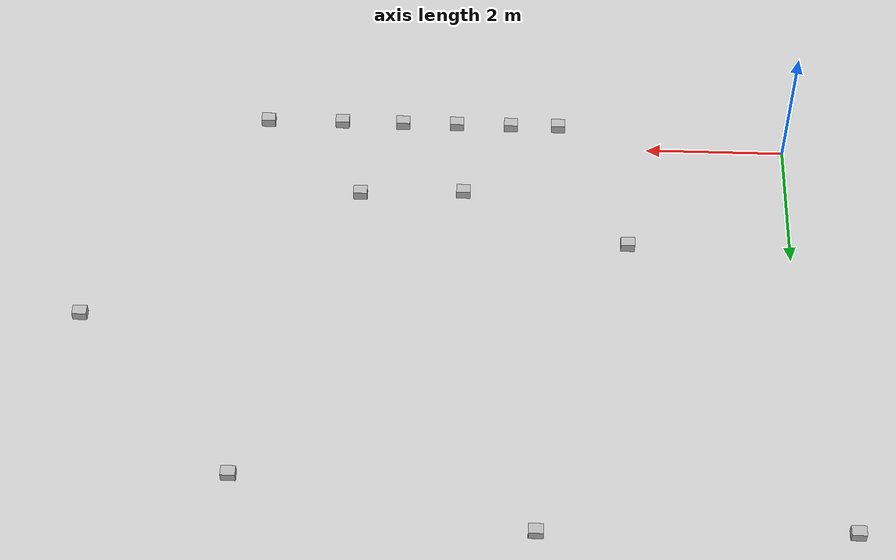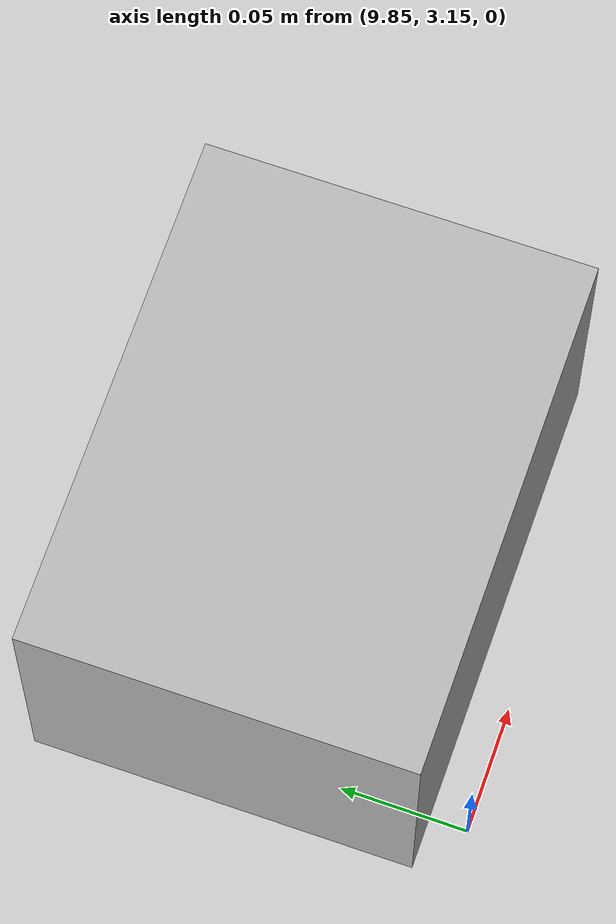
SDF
<?xml version="1.0"?>
<sdf version="1.4">
  <world name="carollo_track_v1">
    <include>
      <uri>model://selfie_description/models/carollo_track_v1</uri>
      <name>track</name>
      <pose>3.78 4.56 0 0 0 0</pose>
    </include>
    <include>
      <uri>model://sun</uri>
      <pose>0 0 10 0 0 0</pose>
      <name>sun</name>
    </include>
    <include>
      <uri>model://selfie_description/models/box</uri>
      <name>box1</name>
      <pose>3.3 -0.4 0.05 0 0 0</pose>
    </include>
    <include>
      <uri>model://selfie_description/models/box</uri>
      <name>box2</name>
      <pose>4.0 -0.4 0.05 0 0 0</pose>
    </include>
    <include>
      <uri>model://selfie_description/models/box</uri>
      <name>box3</name>
      <pose>4.8 -0.4 0.05 0 0 0</pose>
    </include>
    <include>
      <uri>model://selfie_description/models/box</uri>
      <name>box4</name>
      <pose>5.6 -0.4 0.05 0 0 0</pose>
    </include>
    <include>
      <uri>model://selfie_description/models/box</uri>
      <name>box5</name>
      <pose>6.5 -0.4 0.05 0 0 0</pose>
    </include>
    <include>
      <uri>model://selfie_description/models/box</uri>
      <name>box6</name>
      <pose>7.6 -0.4 0.05 0 0 0</pose>
    </include>
    <include>
      <uri>model://selfie_description/models/box</uri>
      <name>box7</name>
      <pose>4.67 0.9 0.05 0 0 0</pose>
    </include>
    <include>
      <uri>model://selfie_description/models/box</uri>
      <name>box8</name>
      <pose>6.16 0.96 0.05 0 0 0</pose>
    </include>
    <include>
      <uri>model://selfie_description/models/box</uri>
      <name>box9</name>
      <pose>9.93 3.24 0.05 0 0 0</pose>
    </include>
    <include>
      <uri>model://selfie_description/models/box</uri>
      <name>box10</name>
      <pose>7.63 5.8 0.05 0 0 0</pose>
    </include>
    <include>
      <uri>model://selfie_description/models/box</uri>
      <name>box11</name>
      <pose>3.58 6.56 0.05 0 0 0</pose>
    </include>
    <include>
      <uri>model://selfie_description/models/box</uri>
      <name>box12</name>
      <pose>-0.58 6.47 0.05 0 0 0</pose>
    </include>
    <include>
      <uri>model://selfie_description/models/box</uri>
      <name>box13</name>
      <pose>2.31 1.81 0.05 0 0 0</pose>
    </include>

  </world>
</sdf>

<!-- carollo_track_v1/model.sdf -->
<sdf version="1.4">
  <model name="basic_track_ground_plane">
    <static>true</static>
    <link name="track">
      <collision name="collision">
        <geometry>
          <plane>
            <normal> 0 0 1</normal>
            <size>20.966 18.3</size>
          </plane>
        </geometry>
        <surface>
          <friction>
            <ode>
              <mu>100</mu>
              <mu2>50</mu2>
            </ode>
          </friction>
         </surface>
      </collision>
      <visual name="visual">
        <cast_shadows>false</cast_shadows>
        <geometry>
          <plane>
            <normal>0 0 1</normal>
            <size>20.966 18.3</size>
          </plane>
        </geometry>
        <material>
          <script>
            <uri>model://selfie_description/models/carollo_track_v1/materials/scripts</uri>
            <uri>model://selfie_description/models/carollo_track_v1/materials/textures</uri>
            <name>basic_track/Image</name>
          </script>
        </material>
      </visual>
    </link>
  </model>
</sdf>

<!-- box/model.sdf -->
<sdf version="1.4">
<model name="box">
  <pose>0 0 0 0 0 0</pose>
  <static>true</static>
    <link name="link">
      <inertial>
        <mass>1.0</mass>
        <inertia> <!-- inertias are tricky to compute -->
          <!-- http://gazebosim.org/tutorials?tut=inertia&cat=build_robot -->
          <ixx>0.083</ixx>       <!-- for a box: ixx = 0.083 * mass * (y*y + z*z) -->
          <ixy>0.0</ixy>         <!-- for a box: ixy = 0 -->
          <ixz>0.0</ixz>         <!-- for a box: ixz = 0 -->
          <iyy>0.083</iyy>       <!-- for a box: iyy = 0.083 * mass * (x*x + z*z) -->
          <iyz>0.0</iyz>         <!-- for a box: iyz = 0 -->
          <izz>0.083</izz>       <!-- for a box: izz = 0.083 * mass * (x*x + y*y) -->
        </inertia>
      </inertial>
      <collision name="collision">
        <geometry>
          <box>
            <size>0.2 0.15 0.15</size>
          </box>
        </geometry>
      </collision>
      <visual name="visual">
        <material>
          <script>Gazebo/White</script>
        </material>
        <geometry>
          <box>
            <size>0.2 0.15 0.15</size>
          </box>
        </geometry>
      </visual>
    </link>
  </model>
</sdf>
